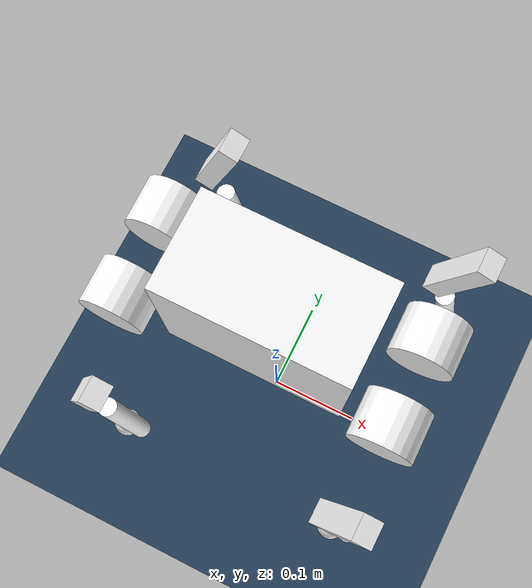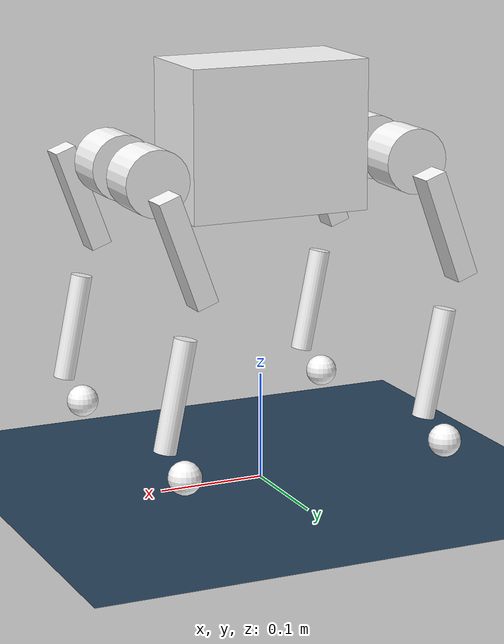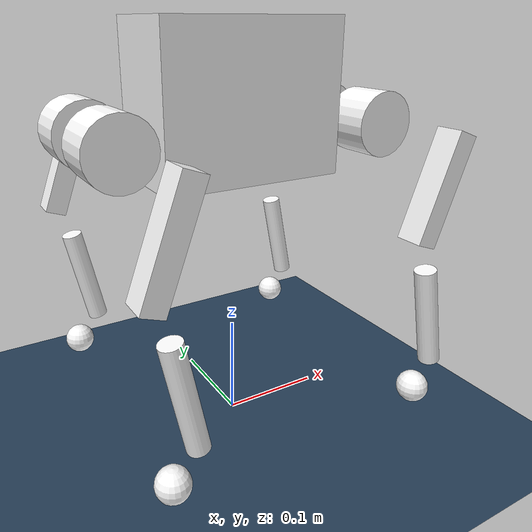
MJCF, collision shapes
<mujoco model="htdw_4438 scene">
  <include file="htdw_4438.xml"/>

  <statistic center="0 0 0.1" extent="0.8"/>

  <visual>
    <headlight diffuse="0.6 0.6 0.6" ambient="0.3 0.3 0.3" specular="0 0 0"/>
    <rgba haze="0.15 0.25 0.35 1"/>
  </visual>

  <asset>
    <texture type="skybox" builtin="gradient" rgb1="0.3 0.5 0.7" rgb2="0 0 0" width="512" height="3072"/>
    <texture type="2d" name="groundplane" builtin="checker" mark="edge" rgb1="0.2 0.3 0.4" rgb2="0.1 0.2 0.3"
      markrgb="0.8 0.8 0.8" width="300" height="300"/>
    <material name="groundplane" texture="groundplane" texuniform="true" texrepeat="5 5" reflectance="0.2"/>
  </asset>

  <worldbody>
    <light pos="0 0 1.5" dir="0 0 -1" directional="true"/>
    <geom name="floor" size="0 0 0.05" type="plane" material="groundplane"/>

  </worldbody>
</mujoco>

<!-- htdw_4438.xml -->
<mujoco model="htdw_4438">
    <compiler angle="radian" meshdir="/home/sunteng/Documents/GitHub/Lain_isaacgym/resources/robots/htdw_4438/meshes/" />
    <size njmax="500" nconmax="100" />

    <asset>
        <mesh name="base_link_simple" file="base_link_simple.STL" />
        <mesh name="FL_hip" file="FL_hip.STL" />
        <mesh name="FL_thigh" file="FL_thigh.STL" />
        <mesh name="FL_calf" file="FL_calf.STL" />
        <mesh name="FL_foot" file="FL_foot.STL" />
        <mesh name="FR_hip" file="FR_hip.STL" />
        <mesh name="FR_thigh" file="FR_thigh.STL" />
        <mesh name="FR_calf" file="FR_calf.STL" />
        <mesh name="FR_foot" file="FR_foot.STL" />
        <mesh name="RL_hip" file="RL_hip.STL" />
        <mesh name="RL_thigh" file="RL_thigh.STL" />
        <mesh name="RL_calf" file="RL_calf.STL" />
        <mesh name="RL_foot" file="RL_foot.STL" />
        <mesh name="RR_hip" file="RR_hip.STL" />
        <mesh name="RR_thigh" file="RR_thigh.STL" />
        <mesh name="RR_calf" file="RR_calf.STL" />
        <mesh name="RR_foot" file="RR_foot.STL" />
    </asset>

    <!-- 统一设置阻尼、摩擦力、碰撞解算参数 -->
    <default>
        <joint limited="true" damping="0.1" frictionloss="0.0" armature="0.0"/>
        <geom contype="1" conaffinity="1" friction="0.8 0.05 0.05" solref="0.005 1"/>
    </default>

    <worldbody>
        <!-- Robot Base (Root Body) from Snippet -->
        <body name="robot" pos="0 0 0.3" quat="1 0 0 0">
            <joint name="float_base" type="free" limited="false"/>
            <inertial pos="0 0 0" quat="1 0 0 0" mass="4.713" diaginertia="0.0168 0.0566 0.0647"/>
            <site name="imu" pos="-0.02557 0 0.04232" />

            <!-- Adding Visual Geoms from Original File to the Root Body -->
            <geom type="mesh" contype="0" conaffinity="0" group="1" rgba="1 1 1 1" mesh="base_link_simple" />
            <geom size="0.085 0.045 0.069" pos="0 0 0.025" type="box" rgba="1 1 1 1" />

            <!-- Front Left Leg -->
            <!-- Joint names changed to Uppercase to match actuators -->
            <body name="fl_hip" pos="0.0909 0.04 0">
                <inertial pos="0.0326958 0.00444394 -9.507e-05" quat="0.465966 0.463585 0.53558 0.530206" mass="0.292358" diaginertia="0.000412728 0.000405494 8.3118e-05" />
                <joint name="FL_hip_joint" pos="0 0 0" axis="1 0 0" limited="true" range="-0.9 0.9" />
                <geom type="mesh" contype="0" conaffinity="0" group="1" rgba="1 1 1 1" mesh="FL_hip" />
                <geom size="0.03 0.0225" pos="0.035 0 0" quat="0.505398 0.499971 0.499971 -0.494602" type="cylinder" rgba="1 1 1 1" />

                <body name="fl_thigh" pos="0.034 0.0254 0">
                    <inertial pos="-0.00137569 0.0379093 -0.0116534" quat="0.884178 0.465761 0.0354147 -0.00650016" mass="0.410408" diaginertia="0.00122804 0.000985868 0.000366426" />
                    <joint name="FL_thigh_joint" pos="0 0 0" axis="0 1 0" limited="true" range="-1.5 3.5" />
                    <geom type="mesh" contype="0" conaffinity="0" group="1" rgba="1 1 1 1" mesh="FL_thigh" />
                    <geom size="0.01 0.0125 0.05" pos="0.004 0.06 -0.045" quat="0.984727 0 0.174108 0" type="box" rgba="1 1 1 1" />

                    <body name="fl_calf" pos="0 0.0604 -0.12">
                        <inertial pos="0.0101367 -0.000182728 -0.0624887" quat="0.710874 -0.0477597 -0.04827 0.700034" mass="0.0469098" diaginertia="0.000213166 0.000209385 5.3017e-06" />
                        <joint name="FL_calf_joint" pos="0 0 0" axis="0 1 0" limited="true" range="-2.5 -1.2" />
                        <geom type="mesh" contype="0" conaffinity="0" group="1" rgba="1 1 1 1" mesh="FL_calf" />
                        <geom size="0.01 0.05" pos="0.013 0 -0.05" quat="0.995004 0 -0.0998334 0" type="cylinder" rgba="1 1 1 1" />

                        <!-- Foot Geoms -->
                        <geom pos="0.00206 6e-05 -0.13694" type="mesh" contype="0" conaffinity="0" group="1" rgba="1 1 1 1" mesh="FL_foot" />
                        <geom size="0.015" pos="0.00456 6e-05 -0.12424" rgba="1 1 1 1" />
                        <!-- Adding a site for possible contact sensing, though not strictly in the sensor snippet -->
                        <site name="FL_foot_site" pos="0.00456 6e-05 -0.12424" size="0.01" rgba="0 0 1 0.5"/>
                    </body>
                </body>
            </body>

            <!-- Front Right Leg -->
            <body name="fr_hip" pos="0.0909 -0.04 0">
                <inertial pos="0.0326958 -0.00444394 9.507e-05" quat="0.53558 0.530206 0.465966 0.463585" mass="0.292358" diaginertia="0.000412728 0.000405494 8.3118e-05" />
                <joint name="FR_hip_joint" pos="0 0 0" axis="1 0 0" limited="true" range="-0.9 0.9" />
                <geom type="mesh" contype="0" conaffinity="0" group="1" rgba="1 1 1 1" mesh="FR_hip" />
                <geom size="0.03 0.0225" pos="0.035 0 0" quat="0.505398 0.499971 0.499971 -0.494602" type="cylinder" rgba="1 1 1 1" />

                <body name="fr_thigh" pos="0.034 -0.0254 0">
                    <inertial pos="-0.00130371 -0.0379128 -0.0115569" quat="0.466339 0.884003 0.00461373 -0.0323373" mass="0.410408" diaginertia="0.0012278 0.000984249 0.000367077" />
                    <joint name="FR_thigh_joint" pos="0 0 0" axis="0 1 0" limited="true" range="-1.5 3.5" />
                    <geom type="mesh" contype="0" conaffinity="0" group="1" rgba="1 1 1 1" mesh="FR_thigh" />
                    <geom size="0.01 0.0125 0.05" pos="0.004 -0.06 -0.045" quat="0.984727 0 0.174108 0" type="box" rgba="1 1 1 1" />

                    <body name="fr_calf" pos="0 -0.0604 -0.12">
                        <inertial pos="0.0101597 1.52233e-05 -0.0626033" quat="0.698922 -0.0488767 -0.0472409 0.711961" mass="0.0469098" diaginertia="0.000213525 0.000209727 5.30063e-06" />
                        <joint name="FR_calf_joint" pos="0 0 0" axis="0 1 0" limited="true" range="-2.5 -1.2" />
                        <geom type="mesh" contype="0" conaffinity="0" group="1" rgba="1 1 1 1" mesh="FR_calf" />
                        <geom size="0.01 0.05" pos="0.013 0 -0.05" quat="0.995004 0 -0.0998334 0" type="cylinder" rgba="1 1 1 1" />

                        <geom pos="0.00206 6e-05 -0.13694" type="mesh" contype="0" conaffinity="0" group="1" rgba="1 1 1 1" mesh="FR_foot" />
                        <geom size="0.015" pos="0.00456 6e-05 -0.12424" rgba="1 1 1 1" />
                        <site name="FR_foot_site" pos="0.00456 6e-05 -0.12424" size="0.01" rgba="0 0 1 0.5"/>
                    </body>
                </body>
            </body>

            <!-- Rear Left Leg -->
            <body name="rl_hip" pos="-0.0909 0.04 0">
                <inertial pos="-0.0326958 0.00444394 9.507e-05" quat="0.530206 0.53558 0.463585 0.465966" mass="0.292358" diaginertia="0.000412728 0.000405494 8.3118e-05" />
                <joint name="RL_hip_joint" pos="0 0 0" axis="1 0 0" limited="true" range="-0.9 0.9" />
                <geom type="mesh" contype="0" conaffinity="0" group="1" rgba="1 1 1 1" mesh="RL_hip" />
                <geom size="0.03 0.0225" pos="-0.035 0 0" quat="0.505398 0.499971 0.499971 -0.494602" type="cylinder" rgba="1 1 1 1" />

                <body name="rl_thigh" pos="-0.034 0.0254 0">
                    <inertial pos="-0.00137569 0.0379093 -0.0116534" quat="0.884178 0.465761 0.0354147 -0.00650016" mass="0.410408" diaginertia="0.00122804 0.000985868 0.000366426" />
                    <joint name="RL_thigh_joint" pos="0 0 0" axis="0 1 0" limited="true" range="-1.5 3.5" />
                    <geom type="mesh" contype="0" conaffinity="0" group="1" rgba="1 1 1 1" mesh="RL_thigh" />
                    <geom size="0.01 0.0125 0.05" pos="0.004 0.06 -0.045" quat="0.984727 0 0.174108 0" type="box" rgba="1 1 1 1" />

                    <body name="rl_calf" pos="0 0.0604 -0.12">
                        <inertial pos="0.0095589 -0.000182728 -0.0624887" quat="0.709338 -0.0452838 -0.0455386 0.701937" mass="0.0469098" diaginertia="0.000213491 0.000208973 6.03985e-06" />
                        <joint name="RL_calf_joint" pos="0 0 0" axis="0 1 0" limited="true" range="-2.5 -1.2" />
                        <geom type="mesh" contype="0" conaffinity="0" group="1" rgba="1 1 1 1" mesh="RL_calf" />
                        <geom size="0.01 0.05" pos="0.013 0 -0.05" quat="0.995004 0 -0.0998334 0" type="cylinder" rgba="1 1 1 1" />

                        <geom pos="-0.00206 6e-05 -0.13694" type="mesh" contype="0" conaffinity="0" group="1" rgba="1 1 1 1" mesh="RL_foot" />
                        <geom size="0.015" pos="0.00044 6e-05 -0.12424" rgba="1 1 1 1" />
                        <site name="RL_foot_site" pos="0.00044 6e-05 -0.12424" size="0.01" rgba="0 0 1 0.5"/>
                    </body>
                </body>
            </body>

            <!-- Rear Right Leg -->
            <body name="rr_hip" pos="-0.0909 -0.04 0">
                <inertial pos="-0.0326958 -0.00444394 -9.507e-05" quat="0.463585 0.465966 0.530206 0.53558" mass="0.292358" diaginertia="0.000412728 0.000405494 8.3118e-05" />
                <joint name="RR_hip_joint" pos="0 0 0" axis="1 0 0" limited="true" range="-0.9 0.9" />
                <geom type="mesh" contype="0" conaffinity="0" group="1" rgba="1 1 1 1" mesh="RR_hip" />
                <geom size="0.03 0.0225" pos="-0.035 0 0" quat="0.505398 0.499971 0.499971 -0.494602" type="cylinder" rgba="1 1 1 1" />

                <body name="rr_thigh" pos="-0.034 -0.0254 0">
                    <inertial pos="-0.00130371 -0.0379128 -0.0115569" quat="0.466339 0.884003 0.00461373 -0.0323373" mass="0.410408" diaginertia="0.0012278 0.000984249 0.000367077" />
                    <joint name="RR_thigh_joint" pos="0 0 0" axis="0 1 0" limited="true" range="-1.5 3.5" />
                    <geom type="mesh" contype="0" conaffinity="0" group="1" rgba="1 1 1 1" mesh="RR_thigh" />
                    <geom size="0.01 0.0125 0.05" pos="0.004 -0.06 -0.045" quat="0.984727 0 0.174108 0" type="box" rgba="1 1 1 1" />

                    <body name="rr_calf" pos="0 -0.0604 -0.12">
                        <inertial pos="0.00958187 1.52233e-05 -0.0626033" quat="0.698998 -0.0462627 -0.044667 0.712227" mass="0.0469098" diaginertia="0.000213852 0.000209314 6.03965e-06" />
                        <joint name="RR_calf_joint" pos="0 0 0" axis="0 1 0" limited="true" range="-2.5 -1.2" />
                        <geom type="mesh" contype="0" conaffinity="0" group="1" rgba="1 1 1 1" mesh="RR_calf" />
                        <geom size="0.01 0.05" pos="0.013 0 -0.05" quat="0.995004 0 -0.0998334 0" type="cylinder" rgba="1 1 1 1" />

                        <geom pos="-0.00206 6e-05 -0.13694" type="mesh" contype="0" conaffinity="0" group="1" rgba="1 1 1 1" mesh="RR_foot" />
                        <geom size="0.015" pos="0.00044 6e-05 -0.12424" rgba="1 1 1 1" />
                        <site name="RR_foot_site" pos="0.00044 6e-05 -0.12424" size="0.01" rgba="0 0 1 0.5"/>
                    </body>
                </body>
            </body>
        </body>
    </worldbody>

    <!-- Actuator Section from Snippet -->
    <actuator>
        <motor name="FL_hip_joint" joint="FL_hip_joint" gear="1" ctrllimited="true" ctrlrange="-10 10"/>
        <motor name="FL_thigh_joint" joint="FL_thigh_joint" gear="1" ctrllimited="true" ctrlrange="-10 10"/>
        <motor name="FL_calf_joint" joint="FL_calf_joint" gear="1" ctrllimited="true" ctrlrange="-10 10"/>

        <motor name="FR_hip_joint" joint="FR_hip_joint" gear="1" ctrllimited="true" ctrlrange="-10 10"/>
        <motor name="FR_thigh_joint" joint="FR_thigh_joint" gear="1" ctrllimited="true" ctrlrange="-10 10"/>
        <motor name="FR_calf_joint" joint="FR_calf_joint" gear="1" ctrllimited="true" ctrlrange="-10 10"/>

        <motor name="RL_hip_joint" joint="RL_hip_joint" gear="1" ctrllimited="true" ctrlrange="-10 10"/>
        <motor name="RL_thigh_joint" joint="RL_thigh_joint" gear="1" ctrllimited="true" ctrlrange="-10 10"/>
        <motor name="RL_calf_joint" joint="RL_calf_joint" gear="1" ctrllimited="true" ctrlrange="-10 10"/>

        <motor name="RR_hip_joint" joint="RR_hip_joint" gear="1" ctrllimited="true" ctrlrange="-10 10"/>
        <motor name="RR_thigh_joint" joint="RR_thigh_joint" gear="1" ctrllimited="true" ctrlrange="-10 10"/>
        <motor name="RR_calf_joint" joint="RR_calf_joint" gear="1" ctrllimited="true" ctrlrange="-10 10"/>
    </actuator>

    <!-- Sensor Section from Snippet -->
    <sensor>
        <actuatorpos name='FR_hip_joint_p'  actuator='FR_hip_joint' user='13'/>
        <actuatorpos name='FR_thigh_joint_p'  actuator='FR_thigh_joint' user='13'/>
        <actuatorpos name='FR_calf_joint_p'  actuator='FR_calf_joint' user='13'/>
        <actuatorpos name='FL_hip_joint_p'  actuator='FL_hip_joint' user='13'/>
        <actuatorpos name='FL_thigh_joint_p'  actuator='FL_thigh_joint' user='13'/>
        <actuatorpos name='FL_calf_joint_p'  actuator='FL_calf_joint' user='13'/>
        <actuatorpos name='RR_hip_joint_p'  actuator='RR_hip_joint' user='13'/>
        <actuatorpos name='RR_thigh_joint_p'  actuator='RR_thigh_joint' user='13'/>
        <actuatorpos name='RR_calf_joint_p'  actuator='RR_calf_joint' user='13'/>
        <actuatorpos name='RL_hip_joint_p'  actuator='RL_hip_joint' user='13'/>
        <actuatorpos name='RL_thigh_joint_p'  actuator='RL_thigh_joint' user='13'/>
        <actuatorpos name='RL_calf_joint_p'  actuator='RL_calf_joint' user='13'/>

        <actuatorvel name='FR_hip_joint_v'  actuator='FR_hip_joint' user='13'/>
        <actuatorvel name='FR_thigh_joint_v'  actuator='FR_thigh_joint' user='13'/>
        <actuatorvel name='FR_calf_joint_v'  actuator='FR_calf_joint' user='13'/>
        <actuatorvel name='FL_hip_joint_v'  actuator='FL_hip_joint' user='13'/>
        <actuatorvel name='FL_thigh_joint_v'  actuator='FL_thigh_joint' user='13'/>
        <actuatorvel name='FL_calf_joint_v'  actuator='FL_calf_joint' user='13'/>
        <actuatorvel name='RR_hip_joint_v'  actuator='RR_hip_joint' user='13'/>
        <actuatorvel name='RR_thigh_joint_v'  actuator='RR_thigh_joint' user='13'/>
        <actuatorvel name='RR_calf_joint_v'  actuator='RR_calf_joint' user='13'/>
        <actuatorvel name='RL_hip_joint_v'  actuator='RL_hip_joint' user='13'/>
        <actuatorvel name='RL_thigh_joint_v'  actuator='RL_thigh_joint' user='13'/>
        <actuatorvel name='RL_calf_joint_v'  actuator='RL_calf_joint' user='13'/>

        <actuatorfrc name='FR_hip_joint_f'  actuator='FR_hip_joint'  user='13' noise='1e-3'/>
        <actuatorfrc name='FR_thigh_joint_f'  actuator='FR_thigh_joint'  user='13' noise='1e-3'/>
        <actuatorfrc name='FR_calf_joint_f'  actuator='FR_calf_joint'  user='13' noise='1e-3'/>
        <actuatorfrc name='FL_hip_joint_f'  actuator='FL_hip_joint'  user='13' noise='1e-3'/>
        <actuatorfrc name='FL_thigh_joint_f'  actuator='FL_thigh_joint'  user='13' noise='1e-3'/>
        <actuatorfrc name='FL_calf_joint_f'  actuator='FL_calf_joint'  user='13' noise='1e-3'/>
        <actuatorfrc name='RR_hip_joint_f'  actuator='RR_hip_joint'  user='13' noise='1e-3'/>
        <actuatorfrc name='RR_thigh_joint_f'  actuator='RR_thigh_joint'  user='13' noise='1e-3'/>
        <actuatorfrc name='RR_calf_joint_f'  actuator='RR_calf_joint'  user='13' noise='1e-3'/>
        <actuatorfrc name='RL_hip_joint_f'  actuator='RL_hip_joint'  user='13' noise='1e-3'/>
        <actuatorfrc name='RL_thigh_joint_f'  actuator='RL_thigh_joint'  user='13' noise='1e-3'/>
        <actuatorfrc name='RL_calf_joint_f'  actuator='RL_calf_joint'  user='13' noise='1e-3'/>

        <framequat     name='orientation' objtype='site' noise='0.001' objname='imu'/>
        <framepos      name='position' objtype='site' noise='0.001' objname='imu'/>
        <gyro          name='angular-velocity'    site='imu' noise='0.005' cutoff='34.9'/>
        <velocimeter   name='linear-velocity'     site='imu' noise='0.001' cutoff='30'/>
        <accelerometer name='linear-acceleration' site='imu' noise='0.005' cutoff='157'/>
        <magnetometer  name='magnetometer'        site='imu'/>
    </sensor>
</mujoco>
